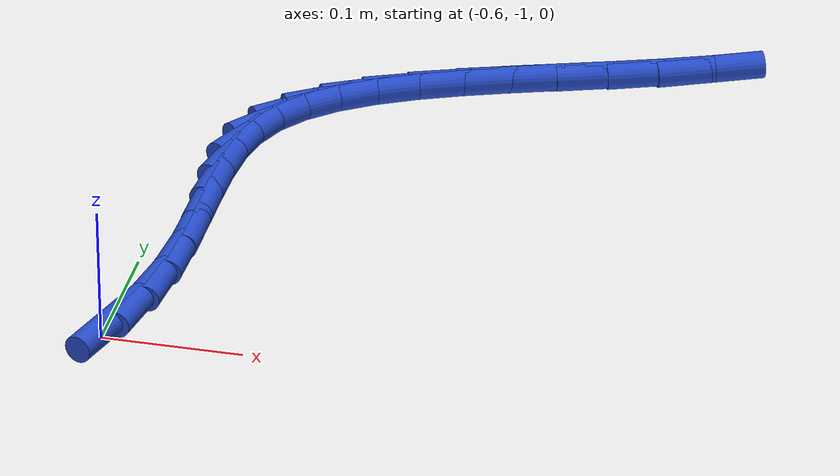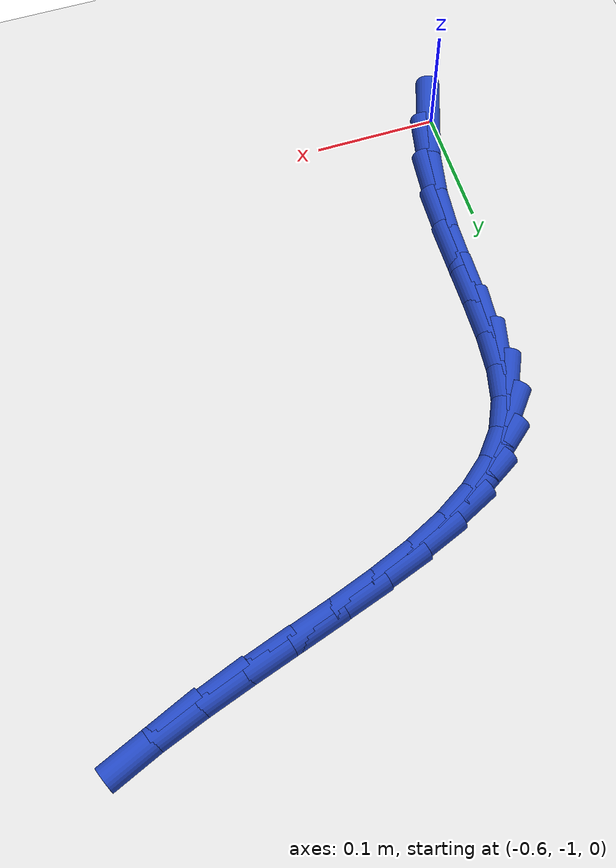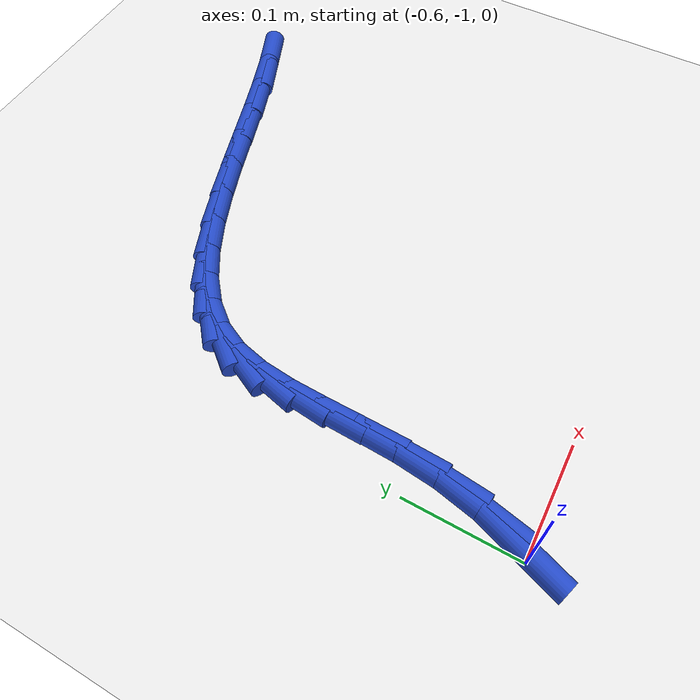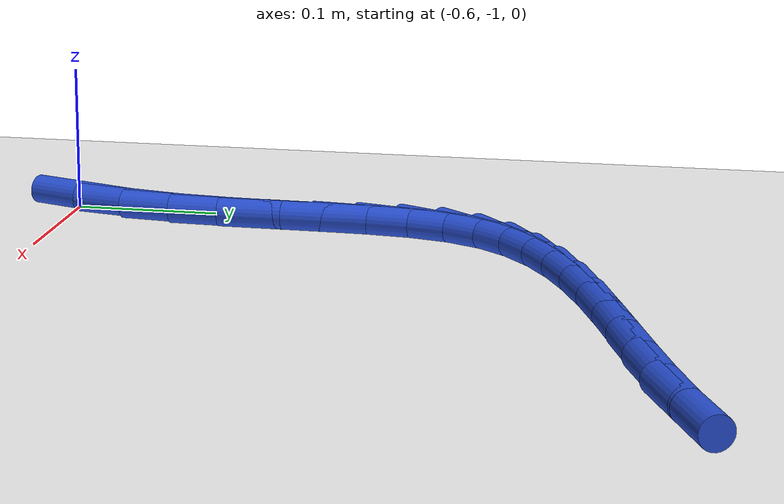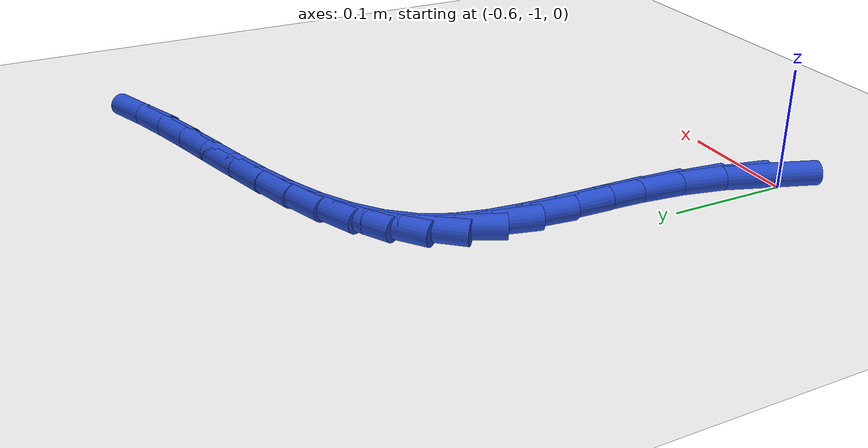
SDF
<sdf version="1.6">
 <world name="default">
  <model name="ground_plane">
   <static>1</static>
   <link name="link">
    <collision name="collision">
     <geometry><plane><normal>0 0 1</normal><size>100 100</size></plane></geometry>
     <surface><friction><ode><mu>100</mu><mu2>50</mu2></ode></friction></surface>
    </collision>
    <visual name="visual">
     <cast_shadows>0</cast_shadows>
     <geometry><plane><normal>0 0 1</normal><size>100 100</size></plane></geometry>
     <material>
      <script><uri>file://media/materials/scripts/gazebo.material</uri><name>Gazebo/WhiteGlow</name></script>
     </material>
    </visual>
   </link>
  </model>
  <model name="line">
   <link name="link_201">
    <pose>-0.5948798481883126 -0.9947482564282955 0.01 0 1.57 1.2415045811655885</pose>
    <collision name="collision">
     <geometry><cylinder><radius>0.01</radius><length>0.08</length></cylinder></geometry>
    </collision>
    <visual name="visual">
     <material>
      <script><name>Gazebo/Blue</name><uri>file://media/materials/scripts/gazebo.material</uri></script>
     </material>
     <geometry><cylinder><radius>0.01</radius><length>0.08</length></cylinder></geometry>
    </visual>
   </link>
   <link name="link_202">
    <pose>-0.5822105444985817 -0.9576746423523972 0.01 0 1.57 1.3719509309463729</pose>
    <collision name="collision">
     <geometry><cylinder><radius>0.01</radius><length>0.08</length></cylinder></geometry>
    </collision>
    <visual name="visual">
     <material>
      <script><name>Gazebo/Blue</name><uri>file://media/materials/scripts/gazebo.material</uri></script>
     </material>
     <geometry><cylinder><radius>0.01</radius><length>0.08</length></cylinder></geometry>
    </visual>
   </link>
   <link name="link_203">
    <pose>-0.5747972752461387 -0.9208857337295664 0.01 0 1.57 1.472062938014943</pose>
    <collision name="collision">
     <geometry><cylinder><radius>0.01</radius><length>0.08</length></cylinder></geometry>
    </collision>
    <visual name="visual">
     <material>
      <script><name>Gazebo/Blue</name><uri>file://media/materials/scripts/gazebo.material</uri></script>
     </material>
     <geometry><cylinder><radius>0.01</radius><length>0.08</length></cylinder></geometry>
    </visual>
   </link>
   <link name="link_204">
    <pose>-0.5712215289230071 -0.8847873106819776 0.01 0 1.57 1.5367477621537309</pose>
    <collision name="collision">
     <geometry><cylinder><radius>0.01</radius><length>0.08</length></cylinder></geometry>
    </collision>
    <visual name="visual">
     <material>
      <script><name>Gazebo/Blue</name><uri>file://media/materials/scripts/gazebo.material</uri></script>
     </material>
     <geometry><cylinder><radius>0.01</radius><length>0.08</length></cylinder></geometry>
    </visual>
   </link>
   <link name="link_205">
    <pose>-0.5700292535594654 -0.8497839381857551 0.01 0 1.57 1.5629509087150457</pose>
    <collision name="collision">
     <geometry><cylinder><radius>0.01</radius><length>0.08</length></cylinder></geometry>
    </collision>
    <visual name="visual">
     <material>
      <script><name>Gazebo/Blue</name><uri>file://media/materials/scripts/gazebo.material</uri></script>
     </material>
     <geometry><cylinder><radius>0.01</radius><length>0.08</length></cylinder></geometry>
    </visual>
   </link>
   <link name="link_206">
    <pose>-0.56976639718579 -0.8162801812170223 0.01 0 1.57 1.5458806007379293</pose>
    <collision name="collision">
     <geometry><cylinder><radius>0.01</radius><length>0.08</length></cylinder></geometry>
    </collision>
    <visual name="visual">
     <material>
      <script><name>Gazebo/Blue</name><uri>file://media/materials/scripts/gazebo.material</uri></script>
     </material>
     <geometry><cylinder><radius>0.01</radius><length>0.08</length></cylinder></geometry>
    </visual>
   </link>
   <link name="link_207">
    <pose>-0.5689789078322587 -0.7846806047519033 0.01 0 1.57 1.4766373532142758</pose>
    <collision name="collision">
     <geometry><cylinder><radius>0.01</radius><length>0.08</length></cylinder></geometry>
    </collision>
    <visual name="visual">
     <material>
      <script><name>Gazebo/Blue</name><uri>file://media/materials/scripts/gazebo.material</uri></script>
     </material>
     <geometry><cylinder><radius>0.01</radius><length>0.08</length></cylinder></geometry>
    </visual>
   </link>
   <link name="link_208">
    <pose>-0.5662127335291486 -0.7553897737665213 0.01 0 1.57 1.3416539681845492</pose>
    <collision name="collision">
     <geometry><cylinder><radius>0.01</radius><length>0.08</length></cylinder></geometry>
    </collision>
    <visual name="visual">
     <material>
      <script><name>Gazebo/Blue</name><uri>file://media/materials/scripts/gazebo.material</uri></script>
     </material>
     <geometry><cylinder><radius>0.01</radius><length>0.08</length></cylinder></geometry>
    </visual>
   </link>
   <link name="link_209">
    <pose>-0.5600138223067374 -0.7288122532370019 0.01 0 1.57 1.130638848778441</pose>
    <collision name="collision">
     <geometry><cylinder><radius>0.01</radius><length>0.08</length></cylinder></geometry>
    </collision>
    <visual name="visual">
     <material>
      <script><name>Gazebo/Blue</name><uri>file://media/materials/scripts/gazebo.material</uri></script>
     </material>
     <geometry><cylinder><radius>0.01</radius><length>0.08</length></cylinder></geometry>
    </visual>
   </link>
   <link name="link_210">
    <pose>-0.5489590874696353 -0.7053401292175491 0.01 0 1.57 0.8928511819644871</pose>
    <collision name="collision">
     <geometry><cylinder><radius>0.01</radius><length>0.08</length></cylinder></geometry>
    </collision>
    <visual name="visual">
     <material>
      <script><name>Gazebo/Blue</name><uri>file://media/materials/scripts/gazebo.material</uri></script>
     </material>
     <geometry><cylinder><radius>0.01</radius><length>0.08</length></cylinder></geometry>
    </visual>
   </link>
   <link name="link_211">
    <pose>-0.5325681961803849 -0.6849855605039951 0.01 0 1.57 0.69665766161774</pose>
    <collision name="collision">
     <geometry><cylinder><radius>0.01</radius><length>0.08</length></cylinder></geometry>
    </collision>
    <visual name="visual">
     <material>
      <script><name>Gazebo/Blue</name><uri>file://media/materials/scripts/gazebo.material</uri></script>
     </material>
     <geometry><cylinder><radius>0.01</radius><length>0.08</length></cylinder></geometry>
    </visual>
   </link>
   <link name="link_212">
    <pose>-0.5114528206882366 -0.6673206307917307 0.01 0 1.57 0.5499328275692893</pose>
    <collision name="collision">
     <geometry><cylinder><radius>0.01</radius><length>0.08</length></cylinder></geometry>
    </collision>
    <visual name="visual">
     <material>
      <script><name>Gazebo/Blue</name><uri>file://media/materials/scripts/gazebo.material</uri></script>
     </material>
     <geometry><cylinder><radius>0.01</radius><length>0.08</length></cylinder></geometry>
    </visual>
   </link>
   <link name="link_213">
    <pose>-0.48628565101744287 -0.651892833777629 0.01 0 1.57 0.4458376623341901</pose>
    <collision name="collision">
     <geometry><cylinder><radius>0.01</radius><length>0.08</length></cylinder></geometry>
    </collision>
    <visual name="visual">
     <material>
      <script><name>Gazebo/Blue</name><uri>file://media/materials/scripts/gazebo.material</uri></script>
     </material>
     <geometry><cylinder><radius>0.01</radius><length>0.08</length></cylinder></geometry>
    </visual>
   </link>
   <link name="link_214">
    <pose>-0.45773937719225527 -0.6382496631585637 0.01 0 1.57 0.3752538039509884</pose>
    <collision name="collision">
     <geometry><cylinder><radius>0.01</radius><length>0.08</length></cylinder></geometry>
    </collision>
    <visual name="visual">
     <material>
      <script><name>Gazebo/Blue</name><uri>file://media/materials/scripts/gazebo.material</uri></script>
     </material>
     <geometry><cylinder><radius>0.01</radius><length>0.08</length></cylinder></geometry>
    </visual>
   </link>
   <link name="link_215">
    <pose>-0.42648668923692495 -0.625938612631408 0.01 0 1.57 0.33080675446361174</pose>
    <collision name="collision">
     <geometry><cylinder><radius>0.01</radius><length>0.08</length></cylinder></geometry>
    </collision>
    <visual name="visual">
     <material>
      <script><name>Gazebo/Blue</name><uri>file://media/materials/scripts/gazebo.material</uri></script>
     </material>
     <geometry><cylinder><radius>0.01</radius><length>0.08</length></cylinder></geometry>
    </visual>
   </link>
   <link name="link_216">
    <pose>-0.3932002771757055 -0.6145071758930365 0.01 0 1.57 0.3075322366742411</pose>
    <collision name="collision">
     <geometry><cylinder><radius>0.01</radius><length>0.08</length></cylinder></geometry>
    </collision>
    <visual name="visual">
     <material>
      <script><name>Gazebo/Blue</name><uri>file://media/materials/scripts/gazebo.material</uri></script>
     </material>
     <geometry><cylinder><radius>0.01</radius><length>0.08</length></cylinder></geometry>
    </visual>
   </link>
   <link name="link_217">
    <pose>-0.35855283103284813 -0.6035028466403224 0.01 0 1.57 0.3025572375967932</pose>
    <collision name="collision">
     <geometry><cylinder><radius>0.01</radius><length>0.08</length></cylinder></geometry>
    </collision>
    <visual name="visual">
     <material>
      <script><name>Gazebo/Blue</name><uri>file://media/materials/scripts/gazebo.material</uri></script>
     </material>
     <geometry><cylinder><radius>0.01</radius><length>0.08</length></cylinder></geometry>
    </visual>
   </link>
   <link name="link_218">
    <pose>-0.3232170408326045 -0.5924731185701388 0.01 0 1.57 0.3147029439121959</pose>
    <collision name="collision">
     <geometry><cylinder><radius>0.01</radius><length>0.08</length></cylinder></geometry>
    </collision>
    <visual name="visual">
     <material>
      <script><name>Gazebo/Blue</name><uri>file://media/materials/scripts/gazebo.material</uri></script>
     </material>
     <geometry><cylinder><radius>0.01</radius><length>0.08</length></cylinder></geometry>
    </visual>
   </link>
   <link name="link_219">
    <pose>-0.28786559659922684 -0.5809654853793598 0.01 0 1.57 0.34422957772347607</pose>
    <collision name="collision">
     <geometry><cylinder><radius>0.01</radius><length>0.08</length></cylinder></geometry>
    </collision>
    <visual name="visual">
     <material>
      <script><name>Gazebo/Blue</name><uri>file://media/materials/scripts/gazebo.material</uri></script>
     </material>
     <geometry><cylinder><radius>0.01</radius><length>0.08</length></cylinder></geometry>
    </visual>
   </link>
   <link name="link_220">
    <pose>-0.25317118835696684 -0.5685274407648588 0.01 0 1.57 0.39272104305493044</pose>
    <collision name="collision">
     <geometry><cylinder><radius>0.01</radius><length>0.08</length></cylinder></geometry>
    </collision>
    <visual name="visual">
     <material>
      <script><name>Gazebo/Blue</name><uri>file://media/materials/scripts/gazebo.material</uri></script>
     </material>
     <geometry><cylinder><radius>0.01</radius><length>0.08</length></cylinder></geometry>
    </visual>
   </link>
  </model>
 </world>
</sdf>
